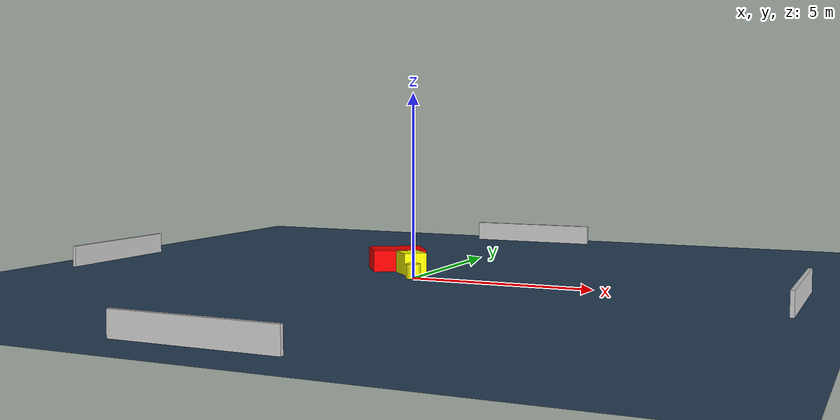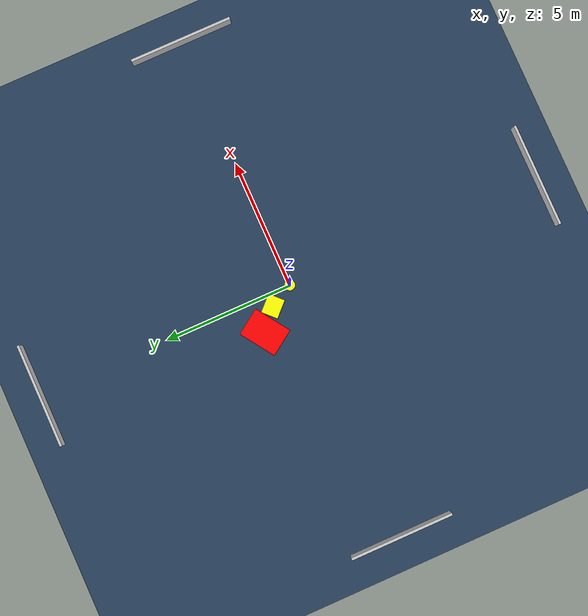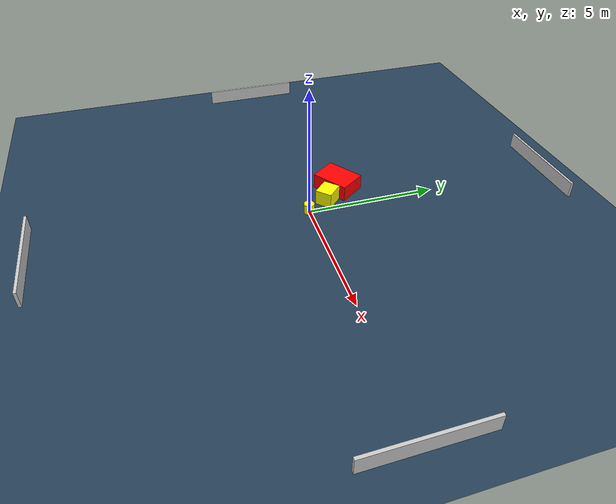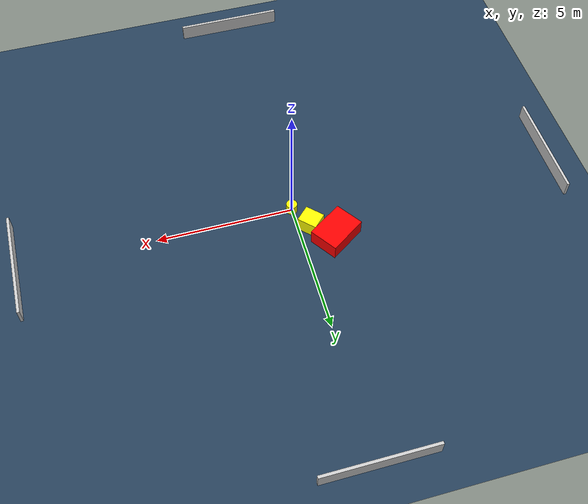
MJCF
<?xml version="1.0" ?>
<mujoco model="generated_environment">
  <option timestep="0.01" integrator="RK4" cone="elliptic"/>
  <default>
    <geom density="1"/>
  </default>
  <asset>
    <texture builtin="gradient" height="3072" name="skybox" rgb1="0.3 0.5 0.7" rgb2="0 0 0" type="skybox" width="512"/>
    <texture builtin="checker" height="300" name="groundplane" rgb1="0.2 0.3 0.4" rgb2="0.1 0.2 0.3" type="2d" width="300"/>
    <material name="groundplane" reflectance="0.2" texrepeat="5 5" texture="groundplane"/>
  </asset>
  <worldbody>
    <light dir="0 0 -1" directional="true" pos="0 0 1.5"/>
    <geom condim="3" friction="0.5 0.005 0.001" material="groundplane" name="floor" pos="0 0 0" size="0 0 0.05" type="plane"/>
    <body name="walls">
      <geom name="wall_1" condim="4" pos="-10.0 0.0 0.3" rgba="0.800000011920929 0.800000011920929 0.800000011920929 1.0" size="0.05 2.0 0.3" type="box"/>
      <geom name="wall_2" condim="4" pos="10.0 0.0 0.3" rgba="0.800000011920929 0.800000011920929 0.800000011920929 1.0" size="0.05 2.0 0.3" type="box"/>
      <geom name="wall_3" condim="4" pos="0.0 -10.0 0.3" rgba="0.800000011920929 0.800000011920929 0.800000011920929 1.0" size="2.0 0.05 0.3" type="box"/>
      <geom name="wall_4" condim="4" pos="0.0 10.0 0.3" rgba="0.800000011920929 0.800000011920929 0.800000011920929 1.0" size="2.0 0.05 0.3" type="box"/>
    </body>
    <body name="robot">
      <joint name="joint_x" type="slide" pos="0 0 0" axis="1 0 0"/>
      <joint name="joint_y" type="slide" pos="0 0 0" axis="0 1 0"/>
      <geom name="robot" type="cylinder" pos="0.0 0.0 0.2" size="0.2 0.2 0.0" mass="5.0" friction="1.0 0.005 0.0001" condim="4" rgba="1.0 1.0 0.0 1.0"/>
    </body>
    <body name="obstacle_1_movable">
      <geom name="obstacle_1_movable" condim="4" pos="-0.46937859751251054 0.8823411529628101 0.3" euler="0 0 224.58114430925545" friction="0.0 0.005 0.001" rgba="1.0 1.0 0.0 1.0" size="0.3218188120964227 0.364055168973367 0.3" type="box" mass="0.1"/>
      <joint type="free"/>
    </body>
    <body name="obstacle_2_static">
      <geom name="obstacle_2_static" condim="4" pos="-1.2197113791275673 1.536606568428743 0.3" euler="0 0 124.3183487748002" friction="0.0 0.005 0.001" rgba="1.0 0.0 0.0 1.0" size="0.5472690216245919 0.7460327795829163 0.3" type="box"/>
    </body>
  </worldbody>
  <actuator>
    <motor name="actuator_x" joint="joint_x" gear="1" ctrlrange="-1 1"/>
    <motor name="actuator_y" joint="joint_y" gear="1" ctrlrange="-1 1"/>
  </actuator>
</mujoco>
